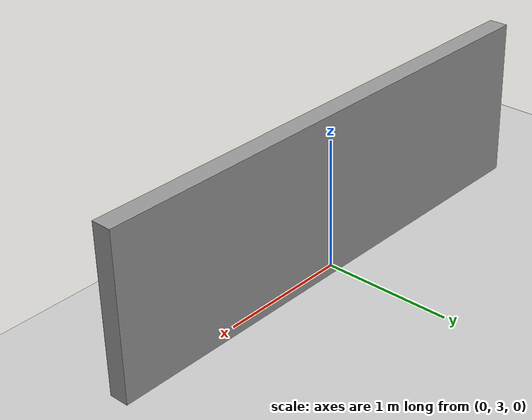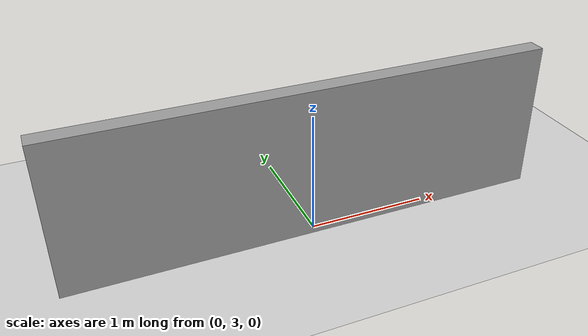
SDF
<sdf version="1.4">
  <world name="default">

    <scene>
      <ambient>0.4 0.4 0.4 1</ambient>
      <background>0.7 0.7 0.7 1</background>
      <shadows>true</shadows>
    </scene>

    <!-- A global light source -->
    <include>
      <uri>model://sun</uri>
    </include>

    <!-- A ground plane -->
    <include>
      <uri>model://ground_plane</uri>
    </include>

    <!-- Include Wall -->
    <include>
      <uri>model://wall</uri>
	<pose>0 3 0 0 0 0</pose>
    </include>

    <physics type="ode">
      <real_time_update_rate>1000.0</real_time_update_rate>
      <max_step_size>0.001</max_step_size>
      <real_time_factor>1</real_time_factor>
      <ode>
        <solver>
          <type>quick</type>
          <iters>150</iters>
          <precon_iters>0</precon_iters>
          <sor>1.400000</sor>
          <use_dynamic_moi_rescaling>1</use_dynamic_moi_rescaling>
        </solver>
        <constraints>
          <cfm>0.00001</cfm>
          <erp>0.2</erp>
          <contact_max_correcting_vel>2000.000000</contact_max_correcting_vel>
          <contact_surface_layer>0.01000</contact_surface_layer>
        </constraints>
      </ode>
    </physics>
  </world>

</sdf>

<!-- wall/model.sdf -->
<sdf version='1.6'>
  <model name='wall'>
    <pose frame=''>-0.465 -2.65 0 0 -0 0</pose>
    <link name='Wall_0'>
      <collision name='Wall_0_Collision'>
        <geometry>
          <box>
            <size>4 0.15 1.25</size>
          </box>
        </geometry>
        <pose frame=''>0 0 .625 0 -0 0</pose>
      </collision>
      <visual name='Wall_0_Visual'>
        <pose frame=''>0 0 .625 0 -0 0</pose>
        <geometry>
          <box>
            <size>4 0.15 1.25</size>
          </box>
        </geometry>
        <material>
          <script>
            <uri>file://media/materials/scripts/gazebo.material</uri>
            <name>Gazebo/Grey</name>
          </script>
          <ambient>1 1 1 1</ambient>
        </material>
      </visual>
      <pose frame=''>0 0 0 0 -0 0</pose>
    </link>
    <static>1</static>
  </model>
</sdf>
